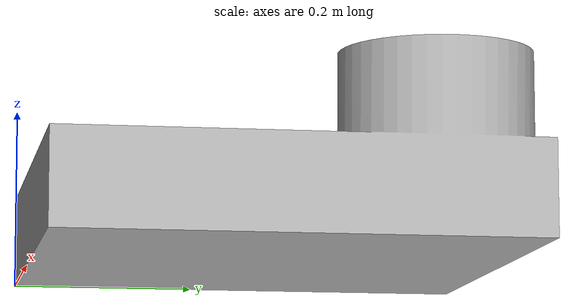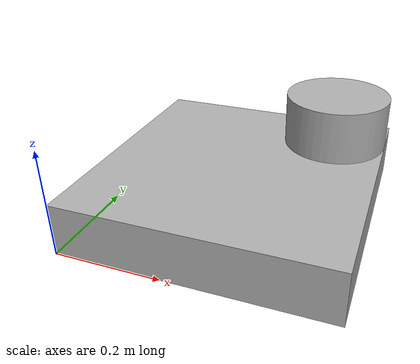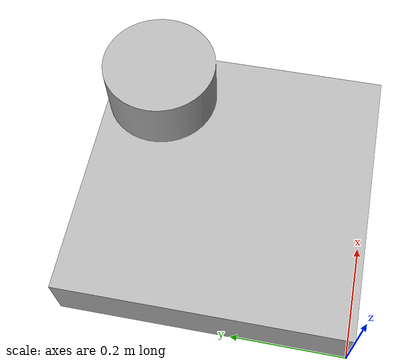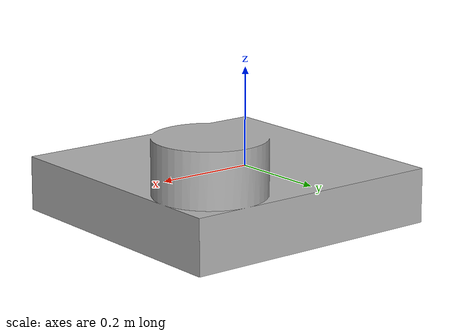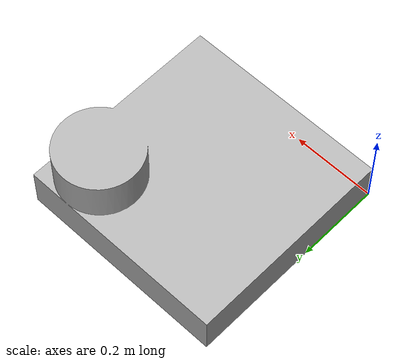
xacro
<?xml version="1.0" ?>
<robot name="test4" xmlns:xacro="http://www.ros.org/wiki/xacro">

<xacro:include filename="$(find test4_description)/urdf/materials.xacro" />
<xacro:include filename="$(find test4_description)/urdf/test4.trans" />
<xacro:include filename="$(find test4_description)/urdf/test4.gazebo" />
<link name="base_link">
  <inertial>
    <origin rpy="0 0 0" xyz="0.266745281755698 0.26674528175570095 0.06116352117046597"/>
    <mass value="220.91150233067987"/>
    <inertia ixx="5.046312" ixy="-0.492939" ixz="-0.328626" iyy="5.046312" iyz="-0.328626" izz="9.286269"/>
  </inertial>
  <visual>
    <origin rpy="0 0 0" xyz="0 0 0"/>
    <geometry>
      <mesh filename="package://test4_description/meshes/base_link.stl" scale="0.001 0.001 0.001"/>
    </geometry>
    <material name="silver"/>
  </visual>
  <collision>
    <origin rpy="0 0 0" xyz="0 0 0"/>
    <geometry>
      <mesh filename="package://test4_description/meshes/base_link.stl" scale="0.001 0.001 0.001"/>
    </geometry>
  </collision>
</link>

</robot>

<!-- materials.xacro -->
<robot name="test4" xmlns:xacro="http://www.ros.org/wiki/xacro" >

<material name="silver">
  <color rgba="0.700 0.700 0.700 1.000"/>
</material>

</robot>

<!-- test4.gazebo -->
<robot name="test4" xmlns:xacro="http://www.ros.org/wiki/xacro" >

<xacro:property name="body_color" value="Gazebo/Silver" />

<gazebo>
  <plugin filename="libgazebo_ros_control.so" name="control"/>
</gazebo>
<gazebo reference="base_link">
  <material>${body_color}</material>
  <mu1>0.2</mu1>
  <mu2>0.2</mu2>
  <selfCollide>true</selfCollide>
  <gravity>true</gravity>
</gazebo>

</robot>
